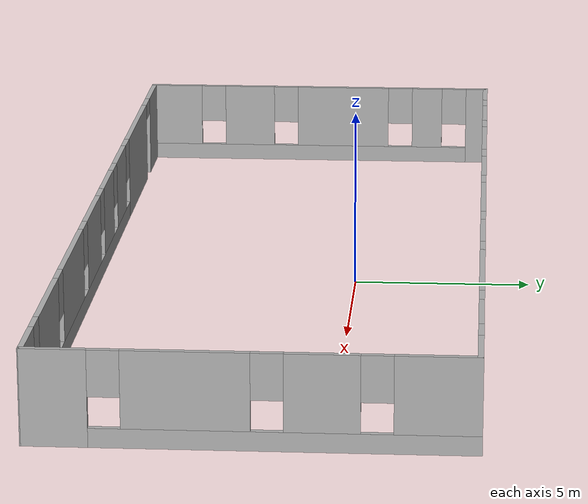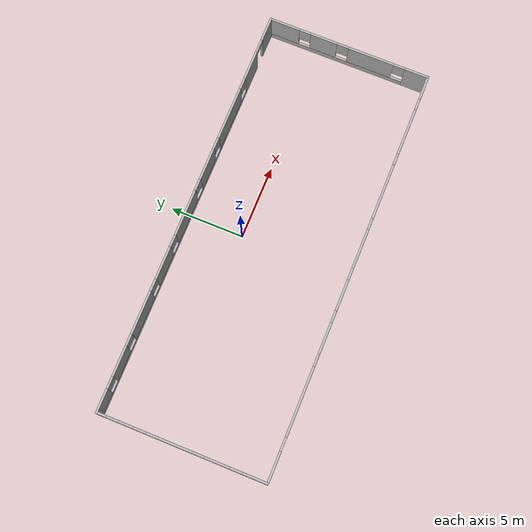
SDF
<?xml version='1.0'?>
<sdf version='1.7'>
  <model name='office_wall'>
    <pose>0 0 0 0 -0 0</pose>
    <link name='Wall_12'>
      <pose>0.014979 -7.43334 0 0 -0 0</pose>
      <visual name='Wall_12_Visual_0'>
        <pose>-12.9625 0 1.25 0 -0 0</pose>
        <geometry>
          <box>
            <size>2.075 0.15 2.5</size>
          </box>
        </geometry>
        <material>
          <diffuse> .7 .7 .7  1.0</diffuse>
          <specular> 0.01 0.01 0.01 1.000000</specular>
          <ambient>.3 .3 .3  1.0</ambient>
        </material>
        <meta>
          <layer>0</layer>
        </meta>
      </visual>
      <collision name='Wall_12_Collision_0'>
        <geometry>
          <box>
            <size>2.075 0.15 2.5</size>
          </box>
        </geometry>
        <pose>-12.9625 0 1.25 0 -0 0</pose>
      </collision>
      <visual name='Wall_12_Visual_1'>
        <pose>-8.75 0 1.25 0 -0 0</pose>
        <geometry>
          <box>
            <size>4.55 0.15 2.5</size>
          </box>
        </geometry>
        <material>
          <diffuse> .7 .7 .7  1.0</diffuse>
          <specular> 0.01 0.01 0.01 1.000000</specular>
          <ambient>.3 .3 .3  1.0</ambient>
        </material>
        <meta>
          <layer>0</layer>
        </meta>
      </visual>
      <collision name='Wall_12_Collision_1'>
        <geometry>
          <box>
            <size>4.55 0.15 2.5</size>
          </box>
        </geometry>
        <pose>-8.75 0 1.25 0 -0 0</pose>
      </collision>
      <visual name='Wall_12_Visual_2'>
        <pose>3.7625 0 0.25 0 -0 0</pose>
        <geometry>
          <box>
            <size>20.475 0.15 0.5</size>
          </box>
        </geometry>
        <material>
          <diffuse> .7 .7 .7  1.0</diffuse>
          <specular> 0.01 0.01 0.01 1.000000</specular>
          <ambient>.3 .3 .3  1.0</ambient>
        </material>
        <meta>
          <layer>0</layer>
        </meta>
      </visual>
      <collision name='Wall_12_Collision_2'>
        <geometry>
          <box>
            <size>20.475 0.15 0.5</size>
          </box>
        </geometry>
        <pose>3.7625 0 0.25 0 -0 0</pose>
      </collision>
      <visual name='Wall_12_Visual_3'>
        <pose>-4.62 0 1.5 0 -0 0</pose>
        <geometry>
          <box>
            <size>2.11 0.15 2</size>
          </box>
        </geometry>
        <material>
          <diffuse> .7 .7 .7  1.0</diffuse>
          <specular> 0.01 0.01 0.01 1.000000</specular>
          <ambient>.3 .3 .3  1.0</ambient>
        </material>
        <meta>
          <layer>0</layer>
        </meta>
      </visual>
      <collision name='Wall_12_Collision_3'>
        <geometry>
          <box>
            <size>2.11 0.15 2</size>
          </box>
        </geometry>
        <pose>-4.62 0 1.5 0 -0 0</pose>
      </collision>
      <visual name='Wall_12_Visual_4'>
        <pose>-1.72 0 1.5 0 -0 0</pose>
        <geometry>
          <box>
            <size>2.09 0.15 2</size>
          </box>
        </geometry>
        <material>
          <diffuse> .7 .7 .7  1.0</diffuse>
          <specular> 0.01 0.01 0.01 1.000000</specular>
          <ambient>.3 .3 .3  1.0</ambient>
        </material>
        <meta>
          <layer>0</layer>
        </meta>
      </visual>
      <collision name='Wall_12_Collision_4'>
        <geometry>
          <box>
            <size>2.09 0.15 2</size>
          </box>
        </geometry>
        <pose>-1.72 0 1.5 0 -0 0</pose>
      </collision>
      <visual name='Wall_12_Visual_5'>
        <pose>1.465 0 1.5 0 -0 0</pose>
        <geometry>
          <box>
            <size>2.68 0.15 2</size>
          </box>
        </geometry>
        <material>
          <diffuse> .7 .7 .7  1.0</diffuse>
          <specular> 0.01 0.01 0.01 1.000000</specular>
          <ambient>.3 .3 .3  1.0</ambient>
        </material>
        <meta>
          <layer>0</layer>
        </meta>
      </visual>
      <collision name='Wall_12_Collision_5'>
        <geometry>
          <box>
            <size>2.68 0.15 2</size>
          </box>
        </geometry>
        <pose>1.465 0 1.5 0 -0 0</pose>
      </collision>
      <visual name='Wall_12_Visual_6'>
        <pose>5.52 0 1.5 0 -0 0</pose>
        <geometry>
          <box>
            <size>3.83 0.15 2</size>
          </box>
        </geometry>
        <material>
          <diffuse> .7 .7 .7  1.0</diffuse>
          <specular> 0.01 0.01 0.01 1.000000</specular>
          <ambient>.3 .3 .3  1.0</ambient>
        </material>
        <meta>
          <layer>0</layer>
        </meta>
      </visual>
      <collision name='Wall_12_Collision_6'>
        <geometry>
          <box>
            <size>3.83 0.15 2</size>
          </box>
        </geometry>
        <pose>5.52 0 1.5 0 -0 0</pose>
      </collision>
      <visual name='Wall_12_Visual_7'>
        <pose>9.87 0 1.5 0 -0 0</pose>
        <geometry>
          <box>
            <size>3.27 0.15 2</size>
          </box>
        </geometry>
        <material>
          <diffuse> .7 .7 .7  1.0</diffuse>
          <specular> 0.01 0.01 0.01 1.000000</specular>
          <ambient>.3 .3 .3  1.0</ambient>
        </material>
        <meta>
          <layer>0</layer>
        </meta>
      </visual>
      <collision name='Wall_12_Collision_7'>
        <geometry>
          <box>
            <size>3.27 0.15 2</size>
          </box>
        </geometry>
        <pose>9.87 0 1.5 0 -0 0</pose>
      </collision>
      <visual name='Wall_12_Visual_8'>
        <pose>13.1525 0 1.5 0 -0 0</pose>
        <geometry>
          <box>
            <size>1.695 0.15 2</size>
          </box>
        </geometry>
        <material>
          <diffuse> .7 .7 .7  1.0</diffuse>
          <specular> 0.01 0.01 0.01 1.000000</specular>
          <ambient>.3 .3 .3  1.0</ambient>
        </material>
        <meta>
          <layer>0</layer>
        </meta>
      </visual>
      <collision name='Wall_12_Collision_8'>
        <geometry>
          <box>
            <size>1.695 0.15 2</size>
          </box>
        </geometry>
        <pose>13.1525 0 1.5 0 -0 0</pose>
      </collision>
      <visual name='Wall_12_Visual_9'>
        <pose>-6.075 0 1.9 0 -0 0</pose>
        <geometry>
          <box>
            <size>0.8 0.15 1.2</size>
          </box>
        </geometry>
        <material>
          <diffuse> .7 .7 .7  1.0</diffuse>
          <specular> 0.01 0.01 0.01 1.000000</specular>
          <ambient>.3 .3 .3  1.0</ambient>
        </material>
        <meta>
          <layer>0</layer>
        </meta>
      </visual>
      <collision name='Wall_12_Collision_9'>
        <geometry>
          <box>
            <size>0.8 0.15 1.2</size>
          </box>
        </geometry>
        <pose>-6.075 0 1.9 0 -0 0</pose>
      </collision>
      <visual name='Wall_12_Visual_10'>
        <pose>-3.165 0 1.9 0 -0 0</pose>
        <geometry>
          <box>
            <size>0.8 0.15 1.2</size>
          </box>
        </geometry>
        <material>
          <diffuse> .7 .7 .7  1.0</diffuse>
          <specular> 0.01 0.01 0.01 1.000000</specular>
          <ambient>.3 .3 .3  1.0</ambient>
        </material>
        <meta>
          <layer>0</layer>
        </meta>
      </visual>
      <collision name='Wall_12_Collision_10'>
        <geometry>
          <box>
            <size>0.8 0.15 1.2</size>
          </box>
        </geometry>
        <pose>-3.165 0 1.9 0 -0 0</pose>
      </collision>
      <visual name='Wall_12_Visual_11'>
        <pose>-0.275 0 1.9 0 -0 0</pose>
        <geometry>
          <box>
            <size>0.8 0.15 1.2</size>
          </box>
        </geometry>
        <material>
          <diffuse> .7 .7 .7  1.0</diffuse>
          <specular> 0.01 0.01 0.01 1.000000</specular>
          <ambient>.3 .3 .3  1.0</ambient>
        </material>
        <meta>
          <layer>0</layer>
        </meta>
      </visual>
      <collision name='Wall_12_Collision_11'>
        <geometry>
          <box>
            <size>0.8 0.15 1.2</size>
          </box>
        </geometry>
        <pose>-0.275 0 1.9 0 -0 0</pose>
      </collision>
      <visual name='Wall_12_Visual_12'>
        <pose>3.205 0 1.9 0 -0 0</pose>
        <geometry>
          <box>
            <size>0.8 0.15 1.2</size>
          </box>
        </geometry>
        <material>
          <diffuse> .7 .7 .7  1.0</diffuse>
          <specular> 0.01 0.01 0.01 1.000000</specular>
          <ambient>.3 .3 .3  1.0</ambient>
        </material>
        <meta>
          <layer>0</layer>
        </meta>
      </visual>
      <collision name='Wall_12_Collision_12'>
        <geometry>
          <box>
            <size>0.8 0.15 1.2</size>
          </box>
        </geometry>
        <pose>3.205 0 1.9 0 -0 0</pose>
      </collision>
      <visual name='Wall_12_Visual_13'>
        <pose>7.835 0 1.9 0 -0 0</pose>
        <geometry>
          <box>
            <size>0.8 0.15 1.2</size>
          </box>
        </geometry>
        <material>
          <diffuse> .7 .7 .7  1.0</diffuse>
          <specular> 0.01 0.01 0.01 1.000000</specular>
          <ambient>.3 .3 .3  1.0</ambient>
        </material>
        <meta>
          <layer>0</layer>
        </meta>
      </visual>
      <collision name='Wall_12_Collision_13'>
        <geometry>
          <box>
            <size>0.8 0.15 1.2</size>
          </box>
        </geometry>
        <pose>7.835 0 1.9 0 -0 0</pose>
      </collision>
      <visual name='Wall_12_Visual_14'>
        <pose>11.905 0 1.9 0 -0 0</pose>
        <geometry>
          <box>
            <size>0.8 0.15 1.2</size>
          </box>
        </geometry>
        <material>
          <diffuse> .7 .7 .7  1.0</diffuse>
          <specular> 0.01 0.01 0.01 1.000000</specular>
          <ambient>.3 .3 .3  1.0</ambient>
        </material>
        <meta>
          <layer>0</layer>
        </meta>
      </visual>
      <collision name='Wall_12_Collision_14'>
        <geometry>
          <box>
            <size>0.8 0.15 1.2</size>
          </box>
        </geometry>
        <pose>11.905 0 1.9 0 -0 0</pose>
      </collision>
      <visual name='Wall_12_Visual_15'>
        <pose>-11.475 0 2.25 0 -0 0</pose>
        <geometry>
          <box>
            <size>0.9 0.15 0.5</size>
          </box>
        </geometry>
        <material>
          <diffuse> .7 .7 .7  1.0</diffuse>
          <specular> 0.01 0.01 0.01 1.000000</specular>
          <ambient>.3 .3 .3  1.0</ambient>
        </material>
        <meta>
          <layer>0</layer>
        </meta>
      </visual>
      <collision name='Wall_12_Collision_15'>
        <geometry>
          <box>
            <size>0.9 0.15 0.5</size>
          </box>
        </geometry>
        <pose>-11.475 0 2.25 0 -0 0</pose>
      </collision>
    </link>
    <link name='Wall_13'>
      <pose>13.945 -1.88834 0 0 -0 1.5699</pose>
      <visual name='Wall_13_Visual_0'>
        <pose>-4.78246 0 1.25 0 -0 0</pose>
        <geometry>
          <box>
            <size>1.67519 0.15 2.5</size>
          </box>
        </geometry>
        <material>
          <diffuse> .7 .7 .7  1.0</diffuse>
          <specular> 0.01 0.01 0.01 1.000000</specular>
          <ambient>.3 .3 .3  1.0</ambient>
        </material>
        <meta>
          <layer>0</layer>
        </meta>
      </visual>
      <collision name='Wall_13_Collision_0'>
        <geometry>
          <box>
            <size>1.67519 0.15 2.5</size>
          </box>
        </geometry>
        <pose>-4.78246 0 1.25 0 -0 0</pose>
      </collision>
      <visual name='Wall_13_Visual_1'>
        <pose>0.837594 0 0.25 0 -0 0</pose>
        <geometry>
          <box>
            <size>9.56492 0.15 0.5</size>
          </box>
        </geometry>
        <material>
          <diffuse> .7 .7 .7  1.0</diffuse>
          <specular> 0.01 0.01 0.01 1.000000</specular>
          <ambient>.3 .3 .3  1.0</ambient>
        </material>
        <meta>
          <layer>0</layer>
        </meta>
      </visual>
      <collision name='Wall_13_Collision_1'>
        <geometry>
          <box>
            <size>9.56492 0.15 0.5</size>
          </box>
        </geometry>
        <pose>0.837594 0 0.25 0 -0 0</pose>
      </collision>
      <visual name='Wall_13_Visual_2'>
        <pose>-1.56471 0 1.5 0 -0 0</pose>
        <geometry>
          <box>
            <size>3.16031 0.15 2</size>
          </box>
        </geometry>
        <material>
          <diffuse> .7 .7 .7  1.0</diffuse>
          <specular> 0.01 0.01 0.01 1.000000</specular>
          <ambient>.3 .3 .3  1.0</ambient>
        </material>
        <meta>
          <layer>0</layer>
        </meta>
      </visual>
      <collision name='Wall_13_Collision_2'>
        <geometry>
          <box>
            <size>3.16031 0.15 2</size>
          </box>
        </geometry>
        <pose>-1.56471 0 1.5 0 -0 0</pose>
      </collision>
      <visual name='Wall_13_Visual_3'>
        <pose>1.74798 0 1.5 0 -0 0</pose>
        <geometry>
          <box>
            <size>1.86509 0.15 2</size>
          </box>
        </geometry>
        <material>
          <diffuse> .7 .7 .7  1.0</diffuse>
          <specular> 0.01 0.01 0.01 1.000000</specular>
          <ambient>.3 .3 .3  1.0</ambient>
        </material>
        <meta>
          <layer>0</layer>
        </meta>
      </visual>
      <collision name='Wall_13_Collision_3'>
        <geometry>
          <box>
            <size>1.86509 0.15 2</size>
          </box>
        </geometry>
        <pose>1.74798 0 1.5 0 -0 0</pose>
      </collision>
      <visual name='Wall_13_Visual_4'>
        <pose>4.55029 0 1.5 0 -0 0</pose>
        <geometry>
          <box>
            <size>2.13953 0.15 2</size>
          </box>
        </geometry>
        <material>
          <diffuse> .7 .7 .7  1.0</diffuse>
          <specular> 0.01 0.01 0.01 1.000000</specular>
          <ambient>.3 .3 .3  1.0</ambient>
        </material>
        <meta>
          <layer>0</layer>
        </meta>
      </visual>
      <collision name='Wall_13_Collision_4'>
        <geometry>
          <box>
            <size>2.13953 0.15 2</size>
          </box>
        </geometry>
        <pose>4.55029 0 1.5 0 -0 0</pose>
      </collision>
      <visual name='Wall_13_Visual_5'>
        <pose>-3.54487 0 1.9 0 -0 0</pose>
        <geometry>
          <box>
            <size>0.8 0.15 1.2</size>
          </box>
        </geometry>
        <material>
          <diffuse> .7 .7 .7  1.0</diffuse>
          <specular> 0.01 0.01 0.01 1.000000</specular>
          <ambient>.3 .3 .3  1.0</ambient>
        </material>
        <meta>
          <layer>0</layer>
        </meta>
      </visual>
      <collision name='Wall_13_Collision_5'>
        <geometry>
          <box>
            <size>0.8 0.15 1.2</size>
          </box>
        </geometry>
        <pose>-3.54487 0 1.9 0 -0 0</pose>
      </collision>
      <visual name='Wall_13_Visual_6'>
        <pose>0.415441 0 1.9 0 -0 0</pose>
        <geometry>
          <box>
            <size>0.8 0.15 1.2</size>
          </box>
        </geometry>
        <material>
          <diffuse> .7 .7 .7  1.0</diffuse>
          <specular> 0.01 0.01 0.01 1.000000</specular>
          <ambient>.3 .3 .3  1.0</ambient>
        </material>
        <meta>
          <layer>0</layer>
        </meta>
      </visual>
      <collision name='Wall_13_Collision_6'>
        <geometry>
          <box>
            <size>0.8 0.15 1.2</size>
          </box>
        </geometry>
        <pose>0.415441 0 1.9 0 -0 0</pose>
      </collision>
      <visual name='Wall_13_Visual_7'>
        <pose>3.08053 0 1.9 0 -0 0</pose>
        <geometry>
          <box>
            <size>0.8 0.15 1.2</size>
          </box>
        </geometry>
        <material>
          <diffuse> .7 .7 .7  1.0</diffuse>
          <specular> 0.01 0.01 0.01 1.000000</specular>
          <ambient>.3 .3 .3  1.0</ambient>
        </material>
        <meta>
          <layer>0</layer>
        </meta>
      </visual>
      <collision name='Wall_13_Collision_7'>
        <geometry>
          <box>
            <size>0.8 0.15 1.2</size>
          </box>
        </geometry>
        <pose>3.08053 0 1.9 0 -0 0</pose>
      </collision>
    </link>
    <link name='Wall_14'>
      <pose>-0.005021 3.66166 0 0 -0 3.14123</pose>
      <visual name='Wall_14_Visual_0'>
        <pose>-13.1575 0 1.25 0 -0 0</pose>
        <geometry>
          <box>
            <size>1.72497 0.15 2.5</size>
          </box>
        </geometry>
        <material>
          <diffuse> .7 .7 .7  1.0</diffuse>
          <specular> 0.01 0.01 0.01 1.000000</specular>
          <ambient>.3 .3 .3  1.0</ambient>
        </material>
        <meta>
          <layer>0</layer>
        </meta>
      </visual>
      <collision name='Wall_14_Collision_0'>
        <geometry>
          <box>
            <size>1.72497 0.15 2.5</size>
          </box>
        </geometry>
        <pose>-13.1575 0 1.25 0 -0 0</pose>
      </collision>
      <visual name='Wall_14_Visual_1'>
        <pose>-10.395 0 1.25 0 -0 0</pose>
        <geometry>
          <box>
            <size>2.00001 0.15 2.5</size>
          </box>
        </geometry>
        <material>
          <diffuse> .7 .7 .7  1.0</diffuse>
          <specular> 0.01 0.01 0.01 1.000000</specular>
          <ambient>.3 .3 .3  1.0</ambient>
        </material>
        <meta>
          <layer>0</layer>
        </meta>
      </visual>
      <collision name='Wall_14_Collision_1'>
        <geometry>
          <box>
            <size>2.00001 0.15 2.5</size>
          </box>
        </geometry>
        <pose>-10.395 0 1.25 0 -0 0</pose>
      </collision>
      <visual name='Wall_14_Visual_2'>
        <pose>2.31249 0 0.25 0 -0 0</pose>
        <geometry>
          <box>
            <size>23.415 0.15 0.5</size>
          </box>
        </geometry>
        <material>
          <diffuse> .7 .7 .7  1.0</diffuse>
          <specular> 0.01 0.01 0.01 1.000000</specular>
          <ambient>.3 .3 .3  1.0</ambient>
        </material>
        <meta>
          <layer>0</layer>
        </meta>
      </visual>
      <collision name='Wall_14_Collision_2'>
        <geometry>
          <box>
            <size>23.415 0.15 0.5</size>
          </box>
        </geometry>
        <pose>2.31249 0 0.25 0 -0 0</pose>
      </collision>
      <visual name='Wall_14_Visual_3'>
        <pose>-6.75501 0 1.5 0 -0 0</pose>
        <geometry>
          <box>
            <size>3.68001 0.15 2</size>
          </box>
        </geometry>
        <material>
          <diffuse> .7 .7 .7  1.0</diffuse>
          <specular> 0.01 0.01 0.01 1.000000</specular>
          <ambient>.3 .3 .3  1.0</ambient>
        </material>
        <meta>
          <layer>0</layer>
        </meta>
      </visual>
      <collision name='Wall_14_Collision_3'>
        <geometry>
          <box>
            <size>3.68001 0.15 2</size>
          </box>
        </geometry>
        <pose>-6.75501 0 1.5 0 -0 0</pose>
      </collision>
      <visual name='Wall_14_Visual_4'>
        <pose>-3.01501 0 1.5 0 -0 0</pose>
        <geometry>
          <box>
            <size>2.19999 0.15 2</size>
          </box>
        </geometry>
        <material>
          <diffuse> .7 .7 .7  1.0</diffuse>
          <specular> 0.01 0.01 0.01 1.000000</specular>
          <ambient>.3 .3 .3  1.0</ambient>
        </material>
        <meta>
          <layer>0</layer>
        </meta>
      </visual>
      <collision name='Wall_14_Collision_4'>
        <geometry>
          <box>
            <size>2.19999 0.15 2</size>
          </box>
        </geometry>
        <pose>-3.01501 0 1.5 0 -0 0</pose>
      </collision>
      <visual name='Wall_14_Visual_5'>
        <pose>0.465004 0 1.5 0 -0 0</pose>
        <geometry>
          <box>
            <size>3.16003 0.15 2</size>
          </box>
        </geometry>
        <material>
          <diffuse> .7 .7 .7  1.0</diffuse>
          <specular> 0.01 0.01 0.01 1.000000</specular>
          <ambient>.3 .3 .3  1.0</ambient>
        </material>
        <meta>
          <layer>0</layer>
        </meta>
      </visual>
      <collision name='Wall_14_Collision_5'>
        <geometry>
          <box>
            <size>3.16003 0.15 2</size>
          </box>
        </geometry>
        <pose>0.465004 0 1.5 0 -0 0</pose>
      </collision>
      <visual name='Wall_14_Visual_6'>
        <pose>3.97001 0 1.5 0 -0 0</pose>
        <geometry>
          <box>
            <size>2.24999 0.15 2</size>
          </box>
        </geometry>
        <material>
          <diffuse> .7 .7 .7  1.0</diffuse>
          <specular> 0.01 0.01 0.01 1.000000</specular>
          <ambient>.3 .3 .3  1.0</ambient>
        </material>
        <meta>
          <layer>0</layer>
        </meta>
      </visual>
      <collision name='Wall_14_Collision_6'>
        <geometry>
          <box>
            <size>2.24999 0.15 2</size>
          </box>
        </geometry>
        <pose>3.97001 0 1.5 0 -0 0</pose>
      </collision>
      <visual name='Wall_14_Visual_7'>
        <pose>7.35001 0 1.5 0 -0 0</pose>
        <geometry>
          <box>
            <size>2.91001 0.15 2</size>
          </box>
        </geometry>
        <material>
          <diffuse> .7 .7 .7  1.0</diffuse>
          <specular> 0.01 0.01 0.01 1.000000</specular>
          <ambient>.3 .3 .3  1.0</ambient>
        </material>
        <meta>
          <layer>0</layer>
        </meta>
      </visual>
      <collision name='Wall_14_Collision_7'>
        <geometry>
          <box>
            <size>2.91001 0.15 2</size>
          </box>
        </geometry>
        <pose>7.35001 0 1.5 0 -0 0</pose>
      </collision>
      <visual name='Wall_14_Visual_8'>
        <pose>10.61 0 1.5 0 -0 0</pose>
        <geometry>
          <box>
            <size>2.01001 0.15 2</size>
          </box>
        </geometry>
        <material>
          <diffuse> .7 .7 .7  1.0</diffuse>
          <specular> 0.01 0.01 0.01 1.000000</specular>
          <ambient>.3 .3 .3  1.0</ambient>
        </material>
        <meta>
          <layer>0</layer>
        </meta>
      </visual>
      <collision name='Wall_14_Collision_8'>
        <geometry>
          <box>
            <size>2.01001 0.15 2</size>
          </box>
        </geometry>
        <pose>10.61 0 1.5 0 -0 0</pose>
      </collision>
      <visual name='Wall_14_Visual_9'>
        <pose>13.2175 0 1.5 0 -0 0</pose>
        <geometry>
          <box>
            <size>1.60497 0.15 2</size>
          </box>
        </geometry>
        <material>
          <diffuse> .7 .7 .7  1.0</diffuse>
          <specular> 0.01 0.01 0.01 1.000000</specular>
          <ambient>.3 .3 .3  1.0</ambient>
        </material>
        <meta>
          <layer>0</layer>
        </meta>
      </visual>
      <collision name='Wall_14_Collision_9'>
        <geometry>
          <box>
            <size>1.60497 0.15 2</size>
          </box>
        </geometry>
        <pose>13.2175 0 1.5 0 -0 0</pose>
      </collision>
      <visual name='Wall_14_Visual_10'>
        <pose>-8.99501 0 1.9 0 -0 0</pose>
        <geometry>
          <box>
            <size>0.8 0.15 1.2</size>
          </box>
        </geometry>
        <material>
          <diffuse> .7 .7 .7  1.0</diffuse>
          <specular> 0.01 0.01 0.01 1.000000</specular>
          <ambient>.3 .3 .3  1.0</ambient>
        </material>
        <meta>
          <layer>0</layer>
        </meta>
      </visual>
      <collision name='Wall_14_Collision_10'>
        <geometry>
          <box>
            <size>0.8 0.15 1.2</size>
          </box>
        </geometry>
        <pose>-8.99501 0 1.9 0 -0 0</pose>
      </collision>
      <visual name='Wall_14_Visual_11'>
        <pose>-4.515 0 1.9 0 -0 0</pose>
        <geometry>
          <box>
            <size>0.8 0.15 1.2</size>
          </box>
        </geometry>
        <material>
          <diffuse> .7 .7 .7  1.0</diffuse>
          <specular> 0.01 0.01 0.01 1.000000</specular>
          <ambient>.3 .3 .3  1.0</ambient>
        </material>
        <meta>
          <layer>0</layer>
        </meta>
      </visual>
      <collision name='Wall_14_Collision_11'>
        <geometry>
          <box>
            <size>0.8 0.15 1.2</size>
          </box>
        </geometry>
        <pose>-4.515 0 1.9 0 -0 0</pose>
      </collision>
      <visual name='Wall_14_Visual_12'>
        <pose>-1.51501 0 1.9 0 -0 0</pose>
        <geometry>
          <box>
            <size>0.8 0.15 1.2</size>
          </box>
        </geometry>
        <material>
          <diffuse> .7 .7 .7  1.0</diffuse>
          <specular> 0.01 0.01 0.01 1.000000</specular>
          <ambient>.3 .3 .3  1.0</ambient>
        </material>
        <meta>
          <layer>0</layer>
        </meta>
      </visual>
      <collision name='Wall_14_Collision_12'>
        <geometry>
          <box>
            <size>0.8 0.15 1.2</size>
          </box>
        </geometry>
        <pose>-1.51501 0 1.9 0 -0 0</pose>
      </collision>
      <visual name='Wall_14_Visual_13'>
        <pose>2.44502 0 1.9 0 -0 0</pose>
        <geometry>
          <box>
            <size>0.8 0.15 1.2</size>
          </box>
        </geometry>
        <material>
          <diffuse> .7 .7 .7  1.0</diffuse>
          <specular> 0.01 0.01 0.01 1.000000</specular>
          <ambient>.3 .3 .3  1.0</ambient>
        </material>
        <meta>
          <layer>0</layer>
        </meta>
      </visual>
      <collision name='Wall_14_Collision_13'>
        <geometry>
          <box>
            <size>0.8 0.15 1.2</size>
          </box>
        </geometry>
        <pose>2.44502 0 1.9 0 -0 0</pose>
      </collision>
      <visual name='Wall_14_Visual_14'>
        <pose>5.49501 0 1.9 0 -0 0</pose>
        <geometry>
          <box>
            <size>0.8 0.15 1.2</size>
          </box>
        </geometry>
        <material>
          <diffuse> .7 .7 .7  1.0</diffuse>
          <specular> 0.01 0.01 0.01 1.000000</specular>
          <ambient>.3 .3 .3  1.0</ambient>
        </material>
        <meta>
          <layer>0</layer>
        </meta>
      </visual>
      <collision name='Wall_14_Collision_14'>
        <geometry>
          <box>
            <size>0.8 0.15 1.2</size>
          </box>
        </geometry>
        <pose>5.49501 0 1.9 0 -0 0</pose>
      </collision>
      <visual name='Wall_14_Visual_15'>
        <pose>9.20502 0 1.9 0 -0 0</pose>
        <geometry>
          <box>
            <size>0.8 0.15 1.2</size>
          </box>
        </geometry>
        <material>
          <diffuse> .7 .7 .7  1.0</diffuse>
          <specular> 0.01 0.01 0.01 1.000000</specular>
          <ambient>.3 .3 .3  1.0</ambient>
        </material>
        <meta>
          <layer>0</layer>
        </meta>
      </visual>
      <collision name='Wall_14_Collision_15'>
        <geometry>
          <box>
            <size>0.8 0.15 1.2</size>
          </box>
        </geometry>
        <pose>9.20502 0 1.9 0 -0 0</pose>
      </collision>
      <visual name='Wall_14_Visual_16'>
        <pose>12.015 0 1.9 0 -0 0</pose>
        <geometry>
          <box>
            <size>0.8 0.15 1.2</size>
          </box>
        </geometry>
        <material>
          <diffuse> .7 .7 .7  1.0</diffuse>
          <specular> 0.01 0.01 0.01 1.000000</specular>
          <ambient>.3 .3 .3  1.0</ambient>
        </material>
        <meta>
          <layer>0</layer>
        </meta>
      </visual>
      <collision name='Wall_14_Collision_16'>
        <geometry>
          <box>
            <size>0.8 0.15 1.2</size>
          </box>
        </geometry>
        <pose>12.015 0 1.9 0 -0 0</pose>
      </collision>
      <visual name='Wall_14_Visual_17'>
        <pose>-11.845 0 2.25 0 -0 0</pose>
        <geometry>
          <box>
            <size>0.9 0.15 0.5</size>
          </box>
        </geometry>
        <material>
          <diffuse> .7 .7 .7  1.0</diffuse>
          <specular> 0.01 0.01 0.01 1.000000</specular>
          <ambient>.3 .3 .3  1.0</ambient>
        </material>
        <meta>
          <layer>0</layer>
        </meta>
      </visual>
      <collision name='Wall_14_Collision_17'>
        <geometry>
          <box>
            <size>0.9 0.15 0.5</size>
          </box>
        </geometry>
        <pose>-11.845 0 2.25 0 -0 0</pose>
      </collision>
    </link>
    <link name='Wall_15'>
      <pose>-13.94 -1.87834 0 0 -0 -1.5708</pose>
      <visual name='Wall_15_Visual_0'>
        <pose>-5.26301 0 1.25 0 -0 0</pose>
        <geometry>
          <box>
            <size>0.714144 0.15 2.5</size>
          </box>
        </geometry>
        <material>
          <diffuse> .7 .7 .7  1.0</diffuse>
          <specular> 0.01 0.01 0.01 1.000000</specular>
          <ambient>.3 .3 .3  1.0</ambient>
        </material>
        <meta>
          <layer>0</layer>
        </meta>
      </visual>
      <collision name='Wall_15_Collision_0'>
        <geometry>
          <box>
            <size>0.714144 0.15 2.5</size>
          </box>
        </geometry>
        <pose>-5.26301 0 1.25 0 -0 0</pose>
      </collision>
      <visual name='Wall_15_Visual_1'>
        <pose>0.357072 0 0.25 0 -0 0</pose>
        <geometry>
          <box>
            <size>10.526 0.15 0.5</size>
          </box>
        </geometry>
        <material>
          <diffuse> .7 .7 .7  1.0</diffuse>
          <specular> 0.01 0.01 0.01 1.000000</specular>
          <ambient>.3 .3 .3  1.0</ambient>
        </material>
        <meta>
          <layer>0</layer>
        </meta>
      </visual>
      <collision name='Wall_15_Collision_1'>
        <geometry>
          <box>
            <size>10.526 0.15 0.5</size>
          </box>
        </geometry>
        <pose>0.357072 0 0.25 0 -0 0</pose>
      </collision>
      <visual name='Wall_15_Visual_2'>
        <pose>-3.61174 0 1.5 0 -0 0</pose>
        <geometry>
          <box>
            <size>0.988387 0.15 2</size>
          </box>
        </geometry>
        <material>
          <diffuse> .7 .7 .7  1.0</diffuse>
          <specular> 0.01 0.01 0.01 1.000000</specular>
          <ambient>.3 .3 .3  1.0</ambient>
        </material>
        <meta>
          <layer>0</layer>
        </meta>
      </visual>
      <collision name='Wall_15_Collision_2'>
        <geometry>
          <box>
            <size>0.988387 0.15 2</size>
          </box>
        </geometry>
        <pose>-3.61174 0 1.5 0 -0 0</pose>
      </collision>
      <visual name='Wall_15_Visual_3'>
        <pose>-0.804275 0 1.5 0 -0 0</pose>
        <geometry>
          <box>
            <size>3.02655 0.15 2</size>
          </box>
        </geometry>
        <material>
          <diffuse> .7 .7 .7  1.0</diffuse>
          <specular> 0.01 0.01 0.01 1.000000</specular>
          <ambient>.3 .3 .3  1.0</ambient>
        </material>
        <meta>
          <layer>0</layer>
        </meta>
      </visual>
      <collision name='Wall_15_Collision_3'>
        <geometry>
          <box>
            <size>3.02655 0.15 2</size>
          </box>
        </geometry>
        <pose>-0.804275 0 1.5 0 -0 0</pose>
      </collision>
      <visual name='Wall_15_Visual_4'>
        <pose>2.3279 0 1.5 0 -0 0</pose>
        <geometry>
          <box>
            <size>1.6378 0.15 2</size>
          </box>
        </geometry>
        <material>
          <diffuse> .7 .7 .7  1.0</diffuse>
          <specular> 0.01 0.01 0.01 1.000000</specular>
          <ambient>.3 .3 .3  1.0</ambient>
        </material>
        <meta>
          <layer>0</layer>
        </meta>
      </visual>
      <collision name='Wall_15_Collision_4'>
        <geometry>
          <box>
            <size>1.6378 0.15 2</size>
          </box>
        </geometry>
        <pose>2.3279 0 1.5 0 -0 0</pose>
      </collision>
      <visual name='Wall_15_Visual_5'>
        <pose>4.78344 0 1.5 0 -0 0</pose>
        <geometry>
          <box>
            <size>1.67328 0.15 2</size>
          </box>
        </geometry>
        <material>
          <diffuse> .7 .7 .7  1.0</diffuse>
          <specular> 0.01 0.01 0.01 1.000000</specular>
          <ambient>.3 .3 .3  1.0</ambient>
        </material>
        <meta>
          <layer>0</layer>
        </meta>
      </visual>
      <collision name='Wall_15_Collision_5'>
        <geometry>
          <box>
            <size>1.67328 0.15 2</size>
          </box>
        </geometry>
        <pose>4.78344 0 1.5 0 -0 0</pose>
      </collision>
      <visual name='Wall_15_Visual_6'>
        <pose>-4.50594 0 1.9 0 -0 0</pose>
        <geometry>
          <box>
            <size>0.8 0.15 1.2</size>
          </box>
        </geometry>
        <material>
          <diffuse> .7 .7 .7  1.0</diffuse>
          <specular> 0.01 0.01 0.01 1.000000</specular>
          <ambient>.3 .3 .3  1.0</ambient>
        </material>
        <meta>
          <layer>0</layer>
        </meta>
      </visual>
      <collision name='Wall_15_Collision_6'>
        <geometry>
          <box>
            <size>0.8 0.15 1.2</size>
          </box>
        </geometry>
        <pose>-4.50594 0 1.9 0 -0 0</pose>
      </collision>
      <visual name='Wall_15_Visual_7'>
        <pose>-2.71755 0 1.9 0 -0 0</pose>
        <geometry>
          <box>
            <size>0.8 0.15 1.2</size>
          </box>
        </geometry>
        <material>
          <diffuse> .7 .7 .7  1.0</diffuse>
          <specular> 0.01 0.01 0.01 1.000000</specular>
          <ambient>.3 .3 .3  1.0</ambient>
        </material>
        <meta>
          <layer>0</layer>
        </meta>
      </visual>
      <collision name='Wall_15_Collision_7'>
        <geometry>
          <box>
            <size>0.8 0.15 1.2</size>
          </box>
        </geometry>
        <pose>-2.71755 0 1.9 0 -0 0</pose>
      </collision>
      <visual name='Wall_15_Visual_8'>
        <pose>1.109 0 1.9 0 -0 0</pose>
        <geometry>
          <box>
            <size>0.8 0.15 1.2</size>
          </box>
        </geometry>
        <material>
          <diffuse> .7 .7 .7  1.0</diffuse>
          <specular> 0.01 0.01 0.01 1.000000</specular>
          <ambient>.3 .3 .3  1.0</ambient>
        </material>
        <meta>
          <layer>0</layer>
        </meta>
      </visual>
      <collision name='Wall_15_Collision_8'>
        <geometry>
          <box>
            <size>0.8 0.15 1.2</size>
          </box>
        </geometry>
        <pose>1.109 0 1.9 0 -0 0</pose>
      </collision>
      <visual name='Wall_15_Visual_9'>
        <pose>3.5468 0 1.9 0 -0 0</pose>
        <geometry>
          <box>
            <size>0.8 0.15 1.2</size>
          </box>
        </geometry>
        <material>
          <diffuse> .7 .7 .7  1.0</diffuse>
          <specular> 0.01 0.01 0.01 1.000000</specular>
          <ambient>.3 .3 .3  1.0</ambient>
        </material>
        <meta>
          <layer>0</layer>
        </meta>
      </visual>
      <collision name='Wall_15_Collision_9'>
        <geometry>
          <box>
            <size>0.8 0.15 1.2</size>
          </box>
        </geometry>
        <pose>3.5468 0 1.9 0 -0 0</pose>
      </collision>
    </link>
    <static>1</static>
  </model>
</sdf>
